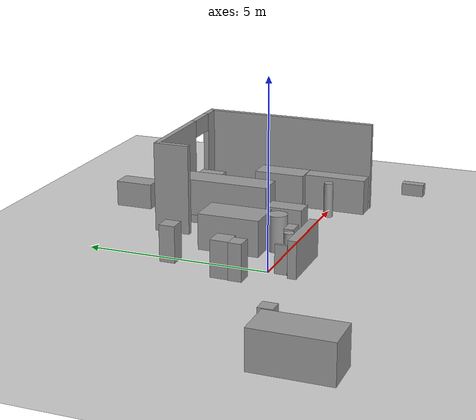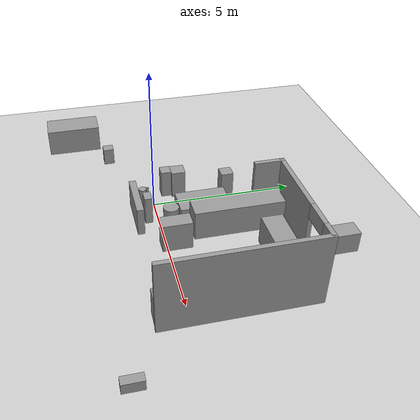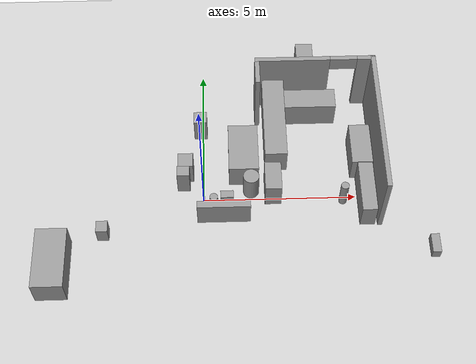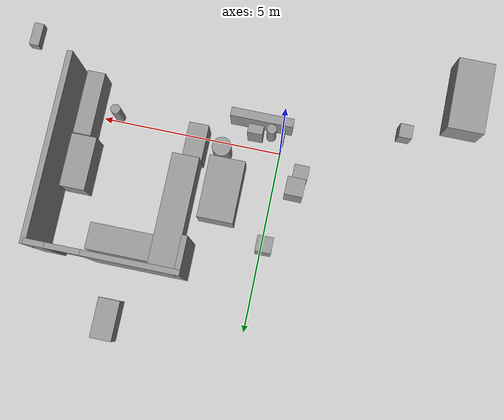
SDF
<sdf version="1.9">
 <world name="default">
  <model name="ground_plane">
   <static>true</static>
   <link name="link">
    <collision name="collision">
     <geometry><plane><normal>0 0 1</normal><size>100 100</size></plane></geometry>
     <surface><friction><ode><mu>100</mu><mu2>50</mu2></ode></friction></surface>
    </collision>
    <visual name="visual">
     <cast_shadows>false</cast_shadows>
     <geometry><plane><normal>0 0 1</normal><size>100 100</size></plane></geometry>
     <material>
      <script><uri>file://media/materials/scripts/gazebo.material</uri><name>Gazebo/Grey</name></script>
     </material>
    </visual>
   </link>
  </model>
  <model name="cma_L5">
   <pose>3.77502 1.45512 0 0 0 0</pose>
   <link name="Wall_0">
    <collision name="Wall_0_Collision">
     <geometry><box><size>1 0.14999999999999999 2.5</size></box></geometry>
     <pose>0 0 1.25 0 0 0</pose>
    </collision>
    <visual name="Wall_0_Visual">
     <pose>0 0 1.25 0 0 0</pose>
     <geometry><box><size>1 0.14999999999999999 2.5</size></box></geometry>
     <material>
      <script><uri>file://media/materials/scripts/gazebo.material</uri><name>Gazebo/Grey</name></script>
      <ambient>1 1 1 1</ambient>
     </material>
    </visual>
    <pose>-1.925 2 0 0 0 1.5708</pose>
   </link>
   <link name="Wall_1">
    <pose>0 2.4249999999999998 0 0 0 0</pose>
    <visual name="Wall_1_Visual_0">
     <pose>-0.75249999999999995 0 1.25 0 0 0</pose>
     <geometry><box><size>2.4950000000000001 0.14999999999999999 2.5</size></box></geometry>
     <material>
      <script><uri>file://media/materials/scripts/gazebo.material</uri><name>Gazebo/Grey</name></script>
      <ambient>1 1 1 1</ambient>
     </material>
    </visual>
    <collision name="Wall_1_Collision_0">
     <geometry><box><size>2.4950000000000001 0.14999999999999999 2.5</size></box></geometry>
     <pose>-0.75249999999999995 0 1.25 0 0 0</pose>
    </collision>
    <visual name="Wall_1_Visual_1">
     <pose>1.6975 0 1.25 0 0 0</pose>
     <geometry><box><size>0.60499999999999998 0.14999999999999999 2.5</size></box></geometry>
     <material>
      <script><uri>file://media/materials/scripts/gazebo.material</uri><name>Gazebo/Grey</name></script>
      <ambient>1 1 1 1</ambient>
     </material>
    </visual>
    <collision name="Wall_1_Collision_1">
     <geometry><box><size>0.60499999999999998 0.14999999999999999 2.5</size></box></geometry>
     <pose>1.6975 0 1.25 0 0 0</pose>
    </collision>
    <visual name="Wall_1_Visual_2">
     <pose>0.94499999999999995 0 2.25 0 0 0</pose>
     <geometry><box><size>0.90000000000000002 0.14999999999999999 0.5</size></box></geometry>
     <material>
      <script><uri>file://media/materials/scripts/gazebo.material</uri><name>Gazebo/Grey</name></script>
      <ambient>1 1 1 1</ambient>
     </material>
    </visual>
    <collision name="Wall_1_Collision_2">
     <geometry><box><size>0.90000000000000002 0.14999999999999999 0.5</size></box></geometry>
     <pose>0.94499999999999995 0 2.25 0 0 0</pose>
    </collision>
   </link>
   <link name="Wall_3">
    <collision name="Wall_3_Collision">
     <geometry><box><size>5 0.14999999999999999 2.5</size></box></geometry>
     <pose>0 0 1.25 0 0 0</pose>
    </collision>
    <visual name="Wall_3_Visual">
     <pose>0 0 1.25 0 0 0</pose>
     <geometry><box><size>5 0.14999999999999999 2.5</size></box></geometry>
     <material>
      <script><uri>file://media/materials/scripts/gazebo.material</uri><name>Gazebo/Grey</name></script>
      <ambient>1 1 1 1</ambient>
     </material>
    </visual>
    <pose>1.925 0 0 0 0 -1.5708</pose>
   </link>
   <static>true</static>
  </model>
  <model name="cma_armario">
   <link name="link_0">
    <pose>1.3215699999999999 0.88517800000000002 0.5 0 0 0</pose>
    <inertial>
     <mass>0.40237600000000001</mass>
     <inertia>
      <ixx>0.0353686</ixx>
      <ixy>0</ixy>
      <ixz>0</ixz>
      <iyy>0.13261600000000001</iyy>
      <iyz>0</iyz>
      <izz>0.100922</izz>
     </inertia>
    </inertial>
    <visual name="visual">
     <geometry><box><size>1.7187699999999999 0.234069 1</size></box></geometry>
     <material>
      <lighting>true</lighting>
      <script><uri>file://media/materials/scripts/gazebo.material</uri><name>Gazebo/Grey</name></script>
      <ambient>0.300000012 0.300000012 0.300000012 1</ambient>
      <diffuse>0.699999988 0.699999988 0.699999988 1</diffuse>
      <specular>0.00999999978 0.00999999978 0.00999999978 1</specular>
      <emissive>0 0 0 1</emissive>
     </material>
    </visual>
    <collision name="collision">
     <geometry><box><size>1.7187699999999999 0.234069 1</size></box></geometry>
     <surface>
      <friction>
       <ode><mu>1</mu><mu2>1</mu2><fdir1>0 0 0</fdir1><slip1>0</slip1><slip2>0</slip2></ode>
       <torsional>
        <coefficient>1</coefficient>
        <patch_radius>0</patch_radius>
        <surface_radius>0</surface_radius>
        <use_patch_radius>true</use_patch_radius>
        <ode><slip>0</slip></ode>
       </torsional>
      </friction>
      <bounce><restitution_coefficient>0</restitution_coefficient><threshold>1000000</threshold></bounce>
      <contact>
       <collide_without_contact>false</collide_without_contact>
       <collide_without_contact_bitmask>1</collide_without_contact_bitmask>
       <collide_bitmask>1</collide_bitmask>
       <ode>
        <soft_cfm>0</soft_cfm>
        <soft_erp>0.20000000000000001</soft_erp>
        <kp>10000000000000</kp>
        <kd>1</kd>
        <max_vel>0.01</max_vel>
        <min_depth>0</min_depth>
       </ode>
       <bullet>
        <split_impulse>true</split_impulse>
        <split_impulse_penetration_threshold>-0.01</split_impulse_penetration_threshold>
        <soft_cfm>0</soft_cfm>
        <soft_erp>0.20000000000000001</soft_erp>
        <kp>10000000000000</kp>
        <kd>1</kd>
       </bullet>
      </contact>
     </surface>
    </collision>
   </link>
   <static>false</static>
   <pose>-0.67050900000000002 -1.58172 9.9999999999999995e-07 -1.0000000000000004e-06 1.0000000000000004e-06 -0.00032100000000000005</pose>
  </model>
  <model name="cma_picador_0">
   <link name="link_2">
    <pose>-0.7258 -1.6910400000000001 0 0 0 0</pose>
    <inertial>
     <mass>0.10473200000000001</mass>
     <inertia>
      <ixx>0.0092790600000000004</ixx>
      <ixy>0</ixy>
      <ixz>0</ixz>
      <iyy>0.010243</iyy>
      <iyz>0</iyz>
      <izz>0.0020667200000000002</izz>
     </inertia>
    </inertial>
    <visual name="visual">
     <geometry><box><size>0.416688 0.25134000000000001 1</size></box></geometry>
     <material>
      <lighting>true</lighting>
      <script><uri>file://media/materials/scripts/gazebo.material</uri><name>Gazebo/Grey</name></script>
      <ambient>0.300000012 0.300000012 0.300000012 1</ambient>
      <diffuse>0.699999988 0.699999988 0.699999988 1</diffuse>
      <specular>0.00999999978 0.00999999978 0.00999999978 1</specular>
      <emissive>0 0 0 1</emissive>
     </material>
    </visual>
    <collision name="collision">
     <geometry><box><size>0.416688 0.25134000000000001 1</size></box></geometry>
     <surface>
      <friction>
       <ode><mu>1</mu><mu2>1</mu2><fdir1>0 0 0</fdir1><slip1>0</slip1><slip2>0</slip2></ode>
       <torsional>
        <coefficient>1</coefficient>
        <patch_radius>0</patch_radius>
        <surface_radius>0</surface_radius>
        <use_patch_radius>true</use_patch_radius>
        <ode><slip>0</slip></ode>
       </torsional>
      </friction>
      <bounce><restitution_coefficient>0</restitution_coefficient><threshold>1000000</threshold></bounce>
      <contact>
       <collide_without_contact>false</collide_without_contact>
       <collide_without_contact_bitmask>1</collide_without_contact_bitmask>
       <collide_bitmask>1</collide_bitmask>
       <ode>
        <soft_cfm>0</soft_cfm>
        <soft_erp>0.20000000000000001</soft_erp>
        <kp>10000000000000</kp>
        <kd>1</kd>
        <max_vel>0.01</max_vel>
        <min_depth>0</min_depth>
       </ode>
       <bullet>
        <split_impulse>true</split_impulse>
        <split_impulse_penetration_threshold>-0.01</split_impulse_penetration_threshold>
        <soft_cfm>0</soft_cfm>
        <soft_erp>0.20000000000000001</soft_erp>
        <kp>10000000000000</kp>
        <kd>1</kd>
       </bullet>
      </contact>
     </surface>
    </collision>
   </link>
   <static>false</static>
   <pose>1.46993 1.3607499999999999 0.49999900000000003 1.654361225109364e-24 2.0000000000000003e-06 0.010210000000000002</pose>
  </model>
  <model name="cma_lixo">
   <link name="link_1">
    <pose>0.88296200000000002 1.81586 0.5 0 0 0</pose>
    <inertial>
     <mass>0.068764400000000003</mass>
     <inertia>
      <ixx>0.00602588</ixx>
      <ixy>0</ixy>
      <ixz>0</ixz>
      <iyy>0.00602588</iyy>
      <iyz>0</iyz>
      <izz>0.00059106800000000004</izz>
     </inertia>
    </inertial>
    <visual name="visual">
     <geometry><cylinder><radius>0.13111200000000001</radius><length>1</length></cylinder></geometry>
     <material>
      <lighting>true</lighting>
      <script><uri>file://media/materials/scripts/gazebo.material</uri><name>Gazebo/Grey</name></script>
      <ambient>0.300000012 0.300000012 0.300000012 1</ambient>
      <diffuse>0.699999988 0.699999988 0.699999988 1</diffuse>
      <specular>0.00999999978 0.00999999978 0.00999999978 1</specular>
      <emissive>0 0 0 1</emissive>
     </material>
    </visual>
    <collision name="collision">
     <geometry><cylinder><radius>0.13111200000000001</radius><length>1</length></cylinder></geometry>
     <surface>
      <friction>
       <ode><mu>1</mu><mu2>1</mu2><fdir1>0 0 0</fdir1><slip1>0</slip1><slip2>0</slip2></ode>
       <torsional>
        <coefficient>1</coefficient>
        <patch_radius>0</patch_radius>
        <surface_radius>0</surface_radius>
        <use_patch_radius>true</use_patch_radius>
        <ode><slip>0</slip></ode>
       </torsional>
      </friction>
      <bounce><restitution_coefficient>0</restitution_coefficient><threshold>1000000</threshold></bounce>
      <contact>
       <collide_without_contact>false</collide_without_contact>
       <collide_without_contact_bitmask>1</collide_without_contact_bitmask>
       <collide_bitmask>1</collide_bitmask>
       <ode>
        <soft_cfm>0</soft_cfm>
        <soft_erp>0.20000000000000001</soft_erp>
        <kp>10000000000000</kp>
        <kd>1</kd>
        <max_vel>0.01</max_vel>
        <min_depth>0</min_depth>
       </ode>
       <bullet>
        <split_impulse>true</split_impulse>
        <split_impulse_penetration_threshold>-0.01</split_impulse_penetration_threshold>
        <soft_cfm>0</soft_cfm>
        <soft_erp>0.20000000000000001</soft_erp>
        <kp>10000000000000</kp>
        <kd>1</kd>
       </bullet>
      </contact>
     </surface>
    </collision>
   </link>
   <static>false</static>
   <pose>-1.35785 -1.5254399999999999 -5.0000000000000004e-06 0 0 -0.54309700000000016</pose>
  </model>
  <model name="cma_cesto">
   <link name="link_1">
    <pose>-0.32965899999999998 -1.55494 0 0 0 0</pose>
    <inertial>
     <mass>0.267897</mass>
     <inertia>
      <ixx>0.026810199999999999</ixx>
      <ixy>0</ixy>
      <ixz>0</ixz>
      <iyy>0.026810199999999999</iyy>
      <iyz>0</iyz>
      <izz>0.0089711099999999992</izz>
     </inertia>
    </inertial>
    <visual name="visual">
     <geometry><cylinder><radius>0.25879200000000002</radius><length>1</length></cylinder></geometry>
     <material>
      <lighting>true</lighting>
      <script><uri>file://media/materials/scripts/gazebo.material</uri><name>Gazebo/Grey</name></script>
      <ambient>0.300000012 0.300000012 0.300000012 1</ambient>
      <diffuse>0.699999988 0.699999988 0.699999988 1</diffuse>
      <specular>0.00999999978 0.00999999978 0.00999999978 1</specular>
      <emissive>0 0 0 1</emissive>
     </material>
    </visual>
    <collision name="collision">
     <geometry><cylinder><radius>0.25879200000000002</radius><length>1</length></cylinder></geometry>
     <surface>
      <friction>
       <ode><mu>1</mu><mu2>1</mu2><fdir1>0 0 0</fdir1><slip1>0</slip1><slip2>0</slip2></ode>
       <torsional>
        <coefficient>1</coefficient>
        <patch_radius>0</patch_radius>
        <surface_radius>0</surface_radius>
        <use_patch_radius>true</use_patch_radius>
        <ode><slip>0</slip></ode>
       </torsional>
      </friction>
      <bounce><restitution_coefficient>0</restitution_coefficient><threshold>1000000</threshold></bounce>
      <contact>
       <collide_without_contact>false</collide_without_contact>
       <collide_without_contact_bitmask>1</collide_without_contact_bitmask>
       <collide_bitmask>1</collide_bitmask>
       <ode>
        <soft_cfm>0</soft_cfm>
        <soft_erp>0.20000000000000001</soft_erp>
        <kp>10000000000000</kp>
        <kd>1</kd>
        <max_vel>0.01</max_vel>
        <min_depth>0</min_depth>
       </ode>
       <bullet>
        <split_impulse>true</split_impulse>
        <split_impulse_penetration_threshold>-0.01</split_impulse_penetration_threshold>
        <soft_cfm>0</soft_cfm>
        <soft_erp>0.20000000000000001</soft_erp>
        <kp>10000000000000</kp>
        <kd>1</kd>
       </bullet>
      </contact>
     </surface>
    </collision>
   </link>
   <static>false</static>
   <pose>1.9109700000000001 1.85863 0.499998 0 0 -0.013204999999999998</pose>
  </model>
  <model name="cma_sofa_2_lugares">
   <link name="link_0">
    <pose>-0.034013000000000002 -0.039828000000000002 0 0 0 0</pose>
    <inertial>
     <mass>1.6607099999999999</mass>
     <inertia>
      <ixx>0.53818299999999997</ixx>
      <ixy>0</ixy>
      <ixz>0</ixz>
      <iyy>0.27051900000000001</iyy>
      <iyz>0</iyz>
      <izz>0.53191500000000003</izz>
     </inertia>
    </inertial>
    <visual name="visual">
     <geometry><box><size>0.97714699999999999 1.6996800000000001 1</size></box></geometry>
     <material>
      <lighting>true</lighting>
      <script><uri>file://media/materials/scripts/gazebo.material</uri><name>Gazebo/Grey</name></script>
      <ambient>0.300000012 0.300000012 0.300000012 1</ambient>
      <diffuse>0.699999988 0.699999988 0.699999988 1</diffuse>
      <specular>0.00999999978 0.00999999978 0.00999999978 1</specular>
      <emissive>0 0 0 1</emissive>
     </material>
    </visual>
    <collision name="collision">
     <geometry><box><size>0.97714699999999999 1.6996800000000001 1</size></box></geometry>
     <surface>
      <friction>
       <ode><mu>1</mu><mu2>1</mu2><fdir1>0 0 0</fdir1><slip1>0</slip1><slip2>0</slip2></ode>
       <torsional>
        <coefficient>1</coefficient>
        <patch_radius>0</patch_radius>
        <surface_radius>0</surface_radius>
        <use_patch_radius>true</use_patch_radius>
        <ode><slip>0</slip></ode>
       </torsional>
      </friction>
      <bounce><restitution_coefficient>0</restitution_coefficient><threshold>1000000</threshold></bounce>
      <contact>
       <collide_without_contact>false</collide_without_contact>
       <collide_without_contact_bitmask>1</collide_without_contact_bitmask>
       <collide_bitmask>1</collide_bitmask>
       <ode>
        <soft_cfm>0</soft_cfm>
        <soft_erp>0.20000000000000001</soft_erp>
        <kp>10000000000000</kp>
        <kd>1</kd>
        <max_vel>0.01</max_vel>
        <min_depth>0</min_depth>
       </ode>
       <bullet>
        <split_impulse>true</split_impulse>
        <split_impulse_penetration_threshold>-0.01</split_impulse_penetration_threshold>
        <soft_cfm>0</soft_cfm>
        <soft_erp>0.20000000000000001</soft_erp>
        <kp>10000000000000</kp>
        <kd>1</kd>
       </bullet>
      </contact>
     </surface>
    </collision>
   </link>
   <static>false</static>
   <pose>1.3641399999999999 1.47316 0.5 0 0 0.00038400000000000001</pose>
  </model>
  <model name="cma_gaveteiro_pequeno_0">
   <link name="link_0">
    <pose>0.25617400000000001 1.2505500000000001 0.5 0 0 0</pose>
    <inertial>
     <mass>0.18718599999999999</mass>
     <inertia>
      <ixx>0.018509999999999999</ixx>
      <ixy>0</ixy>
      <ixz>0</ixz>
      <iyy>0.018527600000000002</iyy>
      <iyz>0</iyz>
      <izz>0.00583981</izz>
     </inertia>
    </inertial>
    <visual name="visual">
     <geometry><box><size>0.43331700000000001 0.432002 1</size></box></geometry>
     <material>
      <lighting>true</lighting>
      <script><uri>file://media/materials/scripts/gazebo.material</uri><name>Gazebo/Grey</name></script>
      <ambient>0.300000012 0.300000012 0.300000012 1</ambient>
      <diffuse>0.699999988 0.699999988 0.699999988 1</diffuse>
      <specular>0.00999999978 0.00999999978 0.00999999978 1</specular>
      <emissive>0 0 0 1</emissive>
     </material>
    </visual>
    <collision name="collision">
     <geometry><box><size>0.43331700000000001 0.432002 1</size></box></geometry>
     <surface>
      <friction>
       <ode><mu>1</mu><mu2>1</mu2><fdir1>0 0 0</fdir1><slip1>0</slip1><slip2>0</slip2></ode>
       <torsional>
        <coefficient>1</coefficient>
        <patch_radius>0</patch_radius>
        <surface_radius>0</surface_radius>
        <use_patch_radius>true</use_patch_radius>
        <ode><slip>0</slip></ode>
       </torsional>
      </friction>
      <bounce><restitution_coefficient>0</restitution_coefficient><threshold>1000000</threshold></bounce>
      <contact>
       <collide_without_contact>false</collide_without_contact>
       <collide_without_contact_bitmask>1</collide_without_contact_bitmask>
       <collide_bitmask>1</collide_bitmask>
       <ode>
        <soft_cfm>0</soft_cfm>
        <soft_erp>0.20000000000000001</soft_erp>
        <kp>10000000000000</kp>
        <kd>1</kd>
        <max_vel>0.01</max_vel>
        <min_depth>0</min_depth>
       </ode>
       <bullet>
        <split_impulse>true</split_impulse>
        <split_impulse_penetration_threshold>-0.01</split_impulse_penetration_threshold>
        <soft_cfm>0</soft_cfm>
        <soft_erp>0.20000000000000001</soft_erp>
        <kp>10000000000000</kp>
        <kd>1</kd>
       </bullet>
      </contact>
     </surface>
    </collision>
   </link>
   <static>false</static>
   <pose>-0.33616800000000002 1.3951499999999999 0 0 -6.9999999999999999e-06 -0.00014699999999999997</pose>
  </model>
  <model name="cma_gaveteiro_0">
   <link name="link_0">
    <pose>0 3.9999999999999998e-06 0 0 0 0</pose>
    <inertial>
     <mass>0.245086</mass>
     <inertia>
      <ixx>0.025418</ixx>
      <ixy>0</ixy>
      <ixz>0</ixz>
      <iyy>0.025441100000000001</iyy>
      <iyz>0</iyz>
      <izz>0.010011300000000001</izz>
     </inertia>
    </inertial>
    <visual name="visual">
     <geometry><box><size>0.49565700000000001 0.49449100000000001 1</size></box></geometry>
     <material>
      <lighting>true</lighting>
      <script><uri>file://media/materials/scripts/gazebo.material</uri><name>Gazebo/Grey</name></script>
      <ambient>0.300000012 0.300000012 0.300000012 1</ambient>
      <diffuse>0.699999988 0.699999988 0.699999988 1</diffuse>
      <specular>0.00999999978 0.00999999978 0.00999999978 1</specular>
      <emissive>0 0 0 1</emissive>
     </material>
    </visual>
    <collision name="collision">
     <geometry><box><size>0.49565700000000001 0.49449100000000001 1</size></box></geometry>
     <surface>
      <friction>
       <ode><mu>1</mu><mu2>1</mu2><fdir1>0 0 0</fdir1><slip1>0</slip1><slip2>0</slip2></ode>
       <torsional>
        <coefficient>1</coefficient>
        <patch_radius>0</patch_radius>
        <surface_radius>0</surface_radius>
        <use_patch_radius>true</use_patch_radius>
        <ode><slip>0</slip></ode>
       </torsional>
      </friction>
      <bounce><restitution_coefficient>0</restitution_coefficient><threshold>1000000</threshold></bounce>
      <contact>
       <collide_without_contact>false</collide_without_contact>
       <collide_without_contact_bitmask>1</collide_without_contact_bitmask>
       <collide_bitmask>1</collide_bitmask>
       <ode>
        <soft_cfm>0</soft_cfm>
        <soft_erp>0.20000000000000001</soft_erp>
        <kp>10000000000000</kp>
        <kd>1</kd>
        <max_vel>0.01</max_vel>
        <min_depth>0</min_depth>
       </ode>
       <bullet>
        <split_impulse>true</split_impulse>
        <split_impulse_penetration_threshold>-0.01</split_impulse_penetration_threshold>
        <soft_cfm>0</soft_cfm>
        <soft_erp>0.20000000000000001</soft_erp>
        <kp>10000000000000</kp>
        <kd>1</kd>
       </bullet>
      </contact>
     </surface>
    </collision>
   </link>
   <static>false</static>
   <pose>-0.57796899999999996 0.98386300000000004 0.50000199999999995 -9.9999999999999995e-07 8.000000000000003e-06 -0.015335</pose>
  </model>
  <model name="cma_sofa2">
   <link name="link_0">
    <pose>-4.6680000000000001 -2.0060099999999998 0.5 0 0 0</pose>
    <inertial>
     <mass>1.9868300000000001</mass>
     <inertia>
      <ixx>0.81914900000000002</ixx>
      <ixy>0</ixy>
      <ixz>0</ixz>
      <iyy>0.33113799999999999</iyy>
      <iyz>0</iyz>
      <izz>0.81914900000000002</izz>
     </inertia>
    </inertial>
    <visual name="visual">
     <geometry><box><size>1 1.98682 1</size></box></geometry>
     <material>
      <lighting>true</lighting>
      <script><uri>file://media/materials/scripts/gazebo.material</uri><name>Gazebo/Grey</name></script>
      <ambient>0.300000012 0.300000012 0.300000012 1</ambient>
      <diffuse>0.699999988 0.699999988 0.699999988 1</diffuse>
      <specular>0.00999999978 0.00999999978 0.00999999978 1</specular>
      <emissive>0 0 0 1</emissive>
     </material>
    </visual>
    <collision name="collision">
     <geometry><box><size>1 1.98682 1</size></box></geometry>
     <surface>
      <friction>
       <ode><mu>1</mu><mu2>1</mu2><fdir1>0 0 0</fdir1><slip1>0</slip1><slip2>0</slip2></ode>
       <torsional>
        <coefficient>1</coefficient>
        <patch_radius>0</patch_radius>
        <surface_radius>0</surface_radius>
        <use_patch_radius>true</use_patch_radius>
        <ode><slip>0</slip></ode>
       </torsional>
      </friction>
      <bounce><restitution_coefficient>0</restitution_coefficient><threshold>1000000</threshold></bounce>
      <contact>
       <collide_without_contact>false</collide_without_contact>
       <collide_without_contact_bitmask>1</collide_without_contact_bitmask>
       <collide_bitmask>1</collide_bitmask>
       <ode>
        <soft_cfm>0</soft_cfm>
        <soft_erp>0.20000000000000001</soft_erp>
        <kp>10000000000000</kp>
        <kd>1</kd>
        <max_vel>0.01</max_vel>
        <min_depth>0</min_depth>
       </ode>
       <bullet>
        <split_impulse>true</split_impulse>
        <split_impulse_penetration_threshold>-0.01</split_impulse_penetration_threshold>
        <soft_cfm>0</soft_cfm>
        <soft_erp>0.20000000000000001</soft_erp>
        <kp>10000000000000</kp>
        <kd>1</kd>
       </bullet>
      </contact>
     </surface>
    </collision>
   </link>
   <static>false</static>
   <pose>-0.095334000000000002 -0.40833399999999997 -5.0000000000000004e-06 -3.0000000000000001e-06 -1.0000000000000002e-06 2.0000000000000003e-06</pose>
  </model>
  <model name="cma_apoio_s">
   <link name="link_1">
    <pose>-1.9376 -3.4655100000000001 0.5 0 0 0</pose>
    <inertial>
     <mass>0.087846300000000002</mass>
     <inertia>
      <ixx>0.0039269600000000002</ixx>
      <ixy>0</ixy>
      <ixz>0</ixz>
      <iyy>0.0038535599999999998</iyy>
      <iyz>0</iyz>
      <izz>0.0020587000000000001</izz>
     </inertia>
    </inertial>
    <visual name="visual">
     <geometry><box><size>0.36822300000000002 0.38159199999999999 0.62511799999999995</size></box></geometry>
     <material>
      <lighting>true</lighting>
      <script><uri>file://media/materials/scripts/gazebo.material</uri><name>Gazebo/Grey</name></script>
      <ambient>0.300000012 0.300000012 0.300000012 1</ambient>
      <diffuse>0.699999988 0.699999988 0.699999988 1</diffuse>
      <specular>0.00999999978 0.00999999978 0.00999999978 1</specular>
      <emissive>0 0 0 1</emissive>
     </material>
    </visual>
    <collision name="collision">
     <geometry><box><size>0.36822300000000002 0.38159199999999999 0.62511799999999995</size></box></geometry>
     <surface>
      <friction>
       <ode><mu>1</mu><mu2>1</mu2><fdir1>0 0 0</fdir1><slip1>0</slip1><slip2>0</slip2></ode>
       <torsional>
        <coefficient>1</coefficient>
        <patch_radius>0</patch_radius>
        <surface_radius>0</surface_radius>
        <use_patch_radius>true</use_patch_radius>
        <ode><slip>0</slip></ode>
       </torsional>
      </friction>
      <bounce><restitution_coefficient>0</restitution_coefficient><threshold>1000000</threshold></bounce>
      <contact>
       <collide_without_contact>false</collide_without_contact>
       <collide_without_contact_bitmask>1</collide_without_contact_bitmask>
       <collide_bitmask>1</collide_bitmask>
       <ode>
        <soft_cfm>0</soft_cfm>
        <soft_erp>0.20000000000000001</soft_erp>
        <kp>10000000000000</kp>
        <kd>1</kd>
        <max_vel>0.01</max_vel>
        <min_depth>0</min_depth>
       </ode>
       <bullet>
        <split_impulse>true</split_impulse>
        <split_impulse_penetration_threshold>-0.01</split_impulse_penetration_threshold>
        <soft_cfm>0</soft_cfm>
        <soft_erp>0.20000000000000001</soft_erp>
        <kp>10000000000000</kp>
        <kd>1</kd>
       </bullet>
      </contact>
     </surface>
    </collision>
   </link>
   <static>false</static>
   <pose>-1.31033 2.2717000000000001 -0.18743599999999999 1.0000000000000002e-06 -9.9999999999999995e-07 -0.00046300000000000003</pose>
  </model>
  <model name="cma_gaveteiro_pequeno_e">
   <link name="link_1">
    <pose>9.9999999999999995e-07 -3.0000000000000001e-06 0 0 0 0</pose>
    <inertial>
     <mass>0.14553199999999999</mass>
     <inertia>
      <ixx>0.0136813</ixx>
      <ixy>0</ixy>
      <ixz>0</ixz>
      <iyy>0.0141327</iyy>
      <iyz>0</iyz>
      <izz>0.0035586599999999999</izz>
     </inertia>
    </inertial>
    <visual name="visual">
     <geometry><box><size>0.40660000000000002 0.35791800000000001 1</size></box></geometry>
     <material>
      <lighting>true</lighting>
      <script><uri>file://media/materials/scripts/gazebo.material</uri><name>Gazebo/Grey</name></script>
      <ambient>0.300000012 0.300000012 0.300000012 1</ambient>
      <diffuse>0.699999988 0.699999988 0.699999988 1</diffuse>
      <specular>0.00999999978 0.00999999978 0.00999999978 1</specular>
      <emissive>0 0 0 1</emissive>
     </material>
    </visual>
    <collision name="collision">
     <geometry><box><size>0.40660000000000002 0.35791800000000001 1</size></box></geometry>
     <surface>
      <friction>
       <ode><mu>1</mu><mu2>1</mu2><fdir1>0 0 0</fdir1><slip1>0</slip1><slip2>0</slip2></ode>
       <torsional>
        <coefficient>1</coefficient>
        <patch_radius>0</patch_radius>
        <surface_radius>0</surface_radius>
        <use_patch_radius>true</use_patch_radius>
        <ode><slip>0</slip></ode>
       </torsional>
      </friction>
      <bounce><restitution_coefficient>0</restitution_coefficient><threshold>1000000</threshold></bounce>
      <contact>
       <collide_without_contact>false</collide_without_contact>
       <collide_without_contact_bitmask>1</collide_without_contact_bitmask>
       <collide_bitmask>1</collide_bitmask>
       <ode>
        <soft_cfm>0</soft_cfm>
        <soft_erp>0.20000000000000001</soft_erp>
        <kp>10000000000000</kp>
        <kd>1</kd>
        <max_vel>0.01</max_vel>
        <min_depth>0</min_depth>
       </ode>
       <bullet>
        <split_impulse>true</split_impulse>
        <split_impulse_penetration_threshold>-0.01</split_impulse_penetration_threshold>
        <soft_cfm>0</soft_cfm>
        <soft_erp>0.20000000000000001</soft_erp>
        <kp>10000000000000</kp>
        <kd>1</kd>
       </bullet>
      </contact>
     </surface>
    </collision>
   </link>
   <static>false</static>
   <pose>-0.65303500000000003 0.55876599999999998 0.5 9.9999999999999995e-07 0 -0.015344999999999999</pose>
  </model>
  <model name="cma_barra_70cmV">
   <link name="link_2">
    <pose>0.076239000000000001 -9.9999999999999995e-07 0 0 0 -1.5755999999999999</pose>
    <inertial>
     <mass>0.063136800000000007</mass>
     <inertia>
      <ixx>0.0010654200000000001</ixx>
      <ixy>0</ixy>
      <ixz>0</ixz>
      <iyy>0.0028472699999999998</iyy>
      <iyz>0</iyz>
      <izz>0.0025815</izz>
     </inertia>
    </inertial>
    <visual name="visual">
     <geometry><box><size>0.64393800000000001 0.27572799999999997 0.35573700000000003</size></box></geometry>
     <material>
      <lighting>true</lighting>
      <script><uri>file://media/materials/scripts/gazebo.material</uri><name>Gazebo/Grey</name></script>
      <ambient>0.300000012 0.300000012 0.300000012 1</ambient>
      <diffuse>0.699999988 0.699999988 0.699999988 1</diffuse>
      <specular>0.00999999978 0.00999999978 0.00999999978 1</specular>
      <emissive>0 0 0 1</emissive>
     </material>
    </visual>
    <collision name="collision">
     <geometry><box><size>0.64393800000000001 0.27572799999999997 0.35573700000000003</size></box></geometry>
     <surface>
      <friction>
       <ode><mu>1</mu><mu2>1</mu2><fdir1>0 0 0</fdir1><slip1>0</slip1><slip2>0</slip2></ode>
       <torsional>
        <coefficient>1</coefficient>
        <patch_radius>0</patch_radius>
        <surface_radius>0</surface_radius>
        <use_patch_radius>true</use_patch_radius>
        <ode><slip>0</slip></ode>
       </torsional>
      </friction>
      <bounce><restitution_coefficient>0</restitution_coefficient><threshold>1000000</threshold></bounce>
      <contact>
       <collide_without_contact>false</collide_without_contact>
       <collide_without_contact_bitmask>1</collide_without_contact_bitmask>
       <collide_bitmask>1</collide_bitmask>
       <ode>
        <soft_cfm>0</soft_cfm>
        <soft_erp>0.20000000000000001</soft_erp>
        <kp>10000000000000</kp>
        <kd>1</kd>
        <max_vel>0.01</max_vel>
        <min_depth>0</min_depth>
       </ode>
       <bullet>
        <split_impulse>true</split_impulse>
        <split_impulse_penetration_threshold>-0.01</split_impulse_penetration_threshold>
        <soft_cfm>0</soft_cfm>
        <soft_erp>0.20000000000000001</soft_erp>
        <kp>10000000000000</kp>
        <kd>1</kd>
       </bullet>
      </contact>
     </surface>
    </collision>
   </link>
   <static>false</static>
   <pose>7.2951699999999997 -1.9239900000000001 0.17786299999999999 0 -2.7000000000000002e-05 -0.00072400000000000003</pose>
  </model>
  <model name="cma_pe_mesa2">
   <link name="link_0">
    <pose>-9.9999999999999995e-07 0 0 0 0 0</pose>
    <inertial>
     <mass>0.0184993</mass>
     <inertia>
      <ixx>0.0011378499999999999</ixx>
      <ixy>0</ixy>
      <ixz>0</ixz>
      <iyy>0.00097356799999999996</iyy>
      <iyz>0</iyz>
      <izz>0.000179385</izz>
     </inertia>
    </inertial>
    <visual name="visual">
     <geometry><box><size>0.070004999999999998 0.33385999999999999 0.79159199999999996</size></box></geometry>
     <material>
      <lighting>true</lighting>
      <script><uri>file://media/materials/scripts/gazebo.material</uri><name>Gazebo/Grey</name></script>
      <ambient>0.300000012 0.300000012 0.300000012 1</ambient>
      <diffuse>0.699999988 0.699999988 0.699999988 1</diffuse>
      <specular>0.00999999978 0.00999999978 0.00999999978 1</specular>
      <emissive>0 0 0 1</emissive>
     </material>
    </visual>
    <collision name="collision">
     <geometry><box><size>0.070004999999999998 0.33385999999999999 0.79159199999999996</size></box></geometry>
     <surface>
      <friction>
       <ode><mu>1</mu><mu2>1</mu2><fdir1>0 0 0</fdir1><slip1>0</slip1><slip2>0</slip2></ode>
       <torsional>
        <coefficient>1</coefficient>
        <patch_radius>0</patch_radius>
        <surface_radius>0</surface_radius>
        <use_patch_radius>true</use_patch_radius>
        <ode><slip>0</slip></ode>
       </torsional>
      </friction>
      <bounce><restitution_coefficient>0</restitution_coefficient><threshold>1000000</threshold></bounce>
      <contact>
       <collide_without_contact>false</collide_without_contact>
       <collide_without_contact_bitmask>1</collide_without_contact_bitmask>
       <collide_bitmask>1</collide_bitmask>
       <ode>
        <soft_cfm>0</soft_cfm>
        <soft_erp>0.20000000000000001</soft_erp>
        <kp>10000000000000</kp>
        <kd>1</kd>
        <max_vel>0.01</max_vel>
        <min_depth>0</min_depth>
       </ode>
       <bullet>
        <split_impulse>true</split_impulse>
        <split_impulse_penetration_threshold>-0.01</split_impulse_penetration_threshold>
        <soft_cfm>0</soft_cfm>
        <soft_erp>0.20000000000000001</soft_erp>
        <kp>10000000000000</kp>
        <kd>1</kd>
       </bullet>
      </contact>
     </surface>
    </collision>
   </link>
   <static>false</static>
   <pose>0.0086339999999999993 -0.34209400000000001 0.39579599999999998 0 -1.9999999999999999e-06 -0.0021680000000000002</pose>
  </model>
  <model name="cma_armario_coz_190x70cm">
   <link name="link_0">
    <pose>5.2095799999999999 2.97661 0.5 0 0 -1.5706800000000001</pose>
    <inertial>
     <mass>1.2966</mass>
     <inertia>
      <ixx>0.45447700000000002</ixx>
      <ixy>0</ixy>
      <ixz>0</ixz>
      <iyy>0.16470599999999999</iyy>
      <iyz>0</iyz>
      <izz>0.403084</izz>
     </inertia>
    </inertial>
    <visual name="visual">
     <geometry><box><size>0.72418400000000005 1.7905800000000001 1</size></box></geometry>
     <material>
      <lighting>true</lighting>
      <script><uri>file://media/materials/scripts/gazebo.material</uri><name>Gazebo/Grey</name></script>
      <ambient>0.300000012 0.300000012 0.300000012 1</ambient>
      <diffuse>0.699999988 0.699999988 0.699999988 1</diffuse>
      <specular>0.00999999978 0.00999999978 0.00999999978 1</specular>
      <emissive>0 0 0 1</emissive>
     </material>
    </visual>
    <collision name="collision">
     <geometry><box><size>0.72418400000000005 1.7905800000000001 1</size></box></geometry>
     <surface>
      <friction>
       <ode><mu>1</mu><mu2>1</mu2><fdir1>0 0 0</fdir1><slip1>0</slip1><slip2>0</slip2></ode>
       <torsional>
        <coefficient>1</coefficient>
        <patch_radius>0</patch_radius>
        <surface_radius>0</surface_radius>
        <use_patch_radius>true</use_patch_radius>
        <ode><slip>0</slip></ode>
       </torsional>
      </friction>
      <bounce><restitution_coefficient>0</restitution_coefficient><threshold>1000000</threshold></bounce>
      <contact>
       <collide_without_contact>false</collide_without_contact>
       <collide_without_contact_bitmask>1</collide_without_contact_bitmask>
       <collide_bitmask>1</collide_bitmask>
       <ode>
        <soft_cfm>0</soft_cfm>
        <soft_erp>0.20000000000000001</soft_erp>
        <kp>10000000000000</kp>
        <kd>1</kd>
        <max_vel>0.01</max_vel>
        <min_depth>0</min_depth>
       </ode>
       <bullet>
        <split_impulse>true</split_impulse>
        <split_impulse_penetration_threshold>-0.01</split_impulse_penetration_threshold>
        <soft_cfm>0</soft_cfm>
        <soft_erp>0.20000000000000001</soft_erp>
        <kp>10000000000000</kp>
        <kd>1</kd>
       </bullet>
      </contact>
     </surface>
    </collision>
   </link>
   <model name="cma_armario_coz_100x50cm">
    <link name="link_0">
     <pose>-3.0000000000000001e-06 -3.0000000000000001e-06 0 0 0 0</pose>
     <inertial>
      <mass>0.53619300000000003</mass>
      <inertia>
       <ixx>0.089365700000000006</ixx>
       <ixy>0</ixy>
       <ixz>0</ixz>
       <iyy>0.057529299999999998</iyy>
       <iyz>0</iyz>
       <izz>0.057529299999999998</izz>
      </inertia>
     </inertial>
     <visual name="visual">
      <geometry><box><size>0.53619300000000003 1 1</size></box></geometry>
      <material>
       <lighting>true</lighting>
       <script><uri>file://media/materials/scripts/gazebo.material</uri><name>Gazebo/Grey</name></script>
       <ambient>0.300000012 0.300000012 0.300000012 1</ambient>
       <diffuse>0.699999988 0.699999988 0.699999988 1</diffuse>
       <specular>0.00999999978 0.00999999978 0.00999999978 1</specular>
       <emissive>0 0 0 1</emissive>
      </material>
     </visual>
     <collision name="collision">
      <geometry><box><size>0.53619300000000003 1 1</size></box></geometry>
      <surface>
       <friction>
        <ode><mu>1</mu><mu2>1</mu2><fdir1>0 0 0</fdir1><slip1>0</slip1><slip2>0</slip2></ode>
        <torsional>
         <coefficient>1</coefficient>
         <patch_radius>0</patch_radius>
         <surface_radius>0</surface_radius>
         <use_patch_radius>true</use_patch_radius>
         <ode><slip>0</slip></ode>
        </torsional>
       </friction>
       <bounce><restitution_coefficient>0</restitution_coefficient><threshold>1000000</threshold></bounce>
       <contact>
        <collide_without_contact>false</collide_without_contact>
        <collide_without_contact_bitmask>1</collide_without_contact_bitmask>
        <collide_bitmask>1</collide_bitmask>
        <ode>
         <soft_cfm>0</soft_cfm>
         <soft_erp>0.20000000000000001</soft_erp>
         <kp>10000000000000</kp>
         <kd>1</kd>
         <max_vel>0.01</max_vel>
         <min_depth>0</min_depth>
        </ode>
        <bullet>
         <split_impulse>true</split_impulse>
         <split_impulse_penetration_threshold>-0.01</split_impulse_penetration_threshold>
         <soft_cfm>0</soft_cfm>
         <soft_erp>0.20000000000000001</soft_erp>
         <kp>10000000000000</kp>
         <kd>1</kd>
        </bullet>
       </contact>
      </surface>
     </collision>
    </link>
    <static>false</static>
    <pose>3.8645499999999999 -0.048915 0.5 0 0 0</pose>
   </model>
   <model name="cma_armario_coz_300x70cm">
    <link name="link_0">
     <pose>3.2642799999999998 1.5085599999999999 0.5 0 0 0</pose>
     <inertial>
      <mass>2.1383299999999998</mass>
      <inertia>
       <ixx>1.732</ixx>
       <ixy>0</ixy>
       <ixz>0</ixz>
       <iyy>0.27163700000000002</iyy>
       <iyz>0</iyz>
       <izz>1.6472500000000001</izz>
      </inertia>
     </inertial>
     <visual name="visual">
      <geometry><box><size>0.72418400000000005 2.9529000000000001 1</size></box></geometry>
      <material>
       <lighting>true</lighting>
       <script><uri>file://media/materials/scripts/gazebo.material</uri><name>Gazebo/Grey</name></script>
       <ambient>0.300000012 0.300000012 0.300000012 1</ambient>
       <diffuse>0.699999988 0.699999988 0.699999988 1</diffuse>
       <specular>0.00999999978 0.00999999978 0.00999999978 1</specular>
       <emissive>0 0 0 1</emissive>
      </material>
     </visual>
     <collision name="collision">
      <geometry><box><size>0.72418400000000005 2.9529000000000001 1</size></box></geometry>
      <surface>
       <friction>
        <ode><mu>1</mu><mu2>1</mu2><fdir1>0 0 0</fdir1><slip1>0</slip1><slip2>0</slip2></ode>
        <torsional>
         <coefficient>1</coefficient>
         <patch_radius>0</patch_radius>
         <surface_radius>0</surface_radius>
         <use_patch_radius>true</use_patch_radius>
         <ode><slip>0</slip></ode>
        </torsional>
       </friction>
       <bounce><restitution_coefficient>0</restitution_coefficient><threshold>1000000</threshold></bounce>
       <contact>
        <collide_without_contact>false</collide_without_contact>
        <collide_without_contact_bitmask>1</collide_without_contact_bitmask>
        <collide_bitmask>1</collide_bitmask>
        <ode>
         <soft_cfm>0</soft_cfm>
         <soft_erp>0.20000000000000001</soft_erp>
         <kp>10000000000000</kp>
         <kd>1</kd>
         <max_vel>0.01</max_vel>
         <min_depth>0</min_depth>
        </ode>
        <bullet>
         <split_impulse>true</split_impulse>
         <split_impulse_penetration_threshold>-0.01</split_impulse_penetration_threshold>
         <soft_cfm>0</soft_cfm>
         <soft_erp>0.20000000000000001</soft_erp>
         <kp>10000000000000</kp>
         <kd>1</kd>
        </bullet>
       </contact>
      </surface>
     </collision>
    </link>
    <static>false</static>
    <pose>0.70628899999999994 0.41883100000000001 0.5 0 0 0</pose>
   </model>
   <static>false</static>
   <pose>-1.59219 0.37055700000000003 -5.0000000000000004e-06 1.9999999999999999e-06 2.0679515313825692e-25 -0.0012000000000000001</pose>
  </model>
  <model name="cma_geladeira">
   <link name="link_2">
    <pose>3.0000000000000001e-06 -3.9999999999999998e-06 0 0 0 0</pose>
    <inertial>
     <mass>0.994085</mass>
     <inertia>
      <ixx>0.258405</ixx>
      <ixy>0</ixy>
      <ixz>0</ixz>
      <iyy>0.12146800000000001</iyy>
      <iyz>0</iyz>
      <izz>0.21419199999999999</izz>
     </inertia>
    </inertial>
    <visual name="visual">
     <geometry><box><size>0.68284400000000001 1.4557899999999999 1</size></box></geometry>
     <material>
      <lighting>true</lighting>
      <script><uri>file://media/materials/scripts/gazebo.material</uri><name>Gazebo/Grey</name></script>
      <ambient>0.300000012 0.300000012 0.300000012 1</ambient>
      <diffuse>0.699999988 0.699999988 0.699999988 1</diffuse>
      <specular>0.00999999978 0.00999999978 0.00999999978 1</specular>
      <emissive>0 0 0 1</emissive>
     </material>
    </visual>
    <collision name="collision">
     <geometry><box><size>0.68284400000000001 1.4557899999999999 1</size></box></geometry>
     <surface>
      <friction>
       <ode><mu>1</mu><mu2>1</mu2><fdir1>0 0 0</fdir1><slip1>0</slip1><slip2>0</slip2></ode>
       <torsional>
        <coefficient>1</coefficient>
        <patch_radius>0</patch_radius>
        <surface_radius>0</surface_radius>
        <use_patch_radius>true</use_patch_radius>
        <ode><slip>0</slip></ode>
       </torsional>
      </friction>
      <bounce><restitution_coefficient>0</restitution_coefficient><threshold>1000000</threshold></bounce>
      <contact>
       <collide_without_contact>false</collide_without_contact>
       <collide_without_contact_bitmask>1</collide_without_contact_bitmask>
       <collide_bitmask>1</collide_bitmask>
       <ode>
        <soft_cfm>0</soft_cfm>
        <soft_erp>0.20000000000000001</soft_erp>
        <kp>10000000000000</kp>
        <kd>1</kd>
        <max_vel>0.01</max_vel>
        <min_depth>0</min_depth>
       </ode>
       <bullet>
        <split_impulse>true</split_impulse>
        <split_impulse_penetration_threshold>-0.01</split_impulse_penetration_threshold>
        <soft_cfm>0</soft_cfm>
        <soft_erp>0.20000000000000001</soft_erp>
        <kp>10000000000000</kp>
        <kd>1</kd>
       </bullet>
      </contact>
     </surface>
    </collision>
   </link>
   <static>false</static>
   <pose>5.2195900000000002 1.47716 0.49999700000000002 -2.5849394143329017e-26 9.0000000000000019e-06 -2.2000000000000003e-05</pose>
  </model>
  <model name="cma_armario_coz_190x40cm">
   <link name="link_3">
    <pose>-3.0000000000000001e-06 9.9999999999999995e-07 0 0 0 0</pose>
    <inertial>
     <mass>0.84861799999999998</mass>
     <inertia>
      <ixx>0.28876000000000002</ixx>
      <ixy>0</ixy>
      <ixz>0</ixz>
      <iyy>0.087235900000000005</iyy>
      <iyz>0</iyz>
      <izz>0.23455899999999999</izz>
     </inertia>
    </inertial>
    <visual name="visual">
     <geometry><box><size>0.48330099999999998 1.7559199999999999 1</size></box></geometry>
     <material>
      <lighting>true</lighting>
      <script><uri>file://media/materials/scripts/gazebo.material</uri><name>Gazebo/Grey</name></script>
      <ambient>0.300000012 0.300000012 0.300000012 1</ambient>
      <diffuse>0.699999988 0.699999988 0.699999988 1</diffuse>
      <specular>0.00999999978 0.00999999978 0.00999999978 1</specular>
      <emissive>0 0 0 1</emissive>
     </material>
    </visual>
    <collision name="collision">
     <geometry><box><size>0.48330099999999998 1.7559199999999999 1</size></box></geometry>
     <surface>
      <friction>
       <ode><mu>1</mu><mu2>1</mu2><fdir1>0 0 0</fdir1><slip1>0</slip1><slip2>0</slip2></ode>
       <torsional>
        <coefficient>1</coefficient>
        <patch_radius>0</patch_radius>
        <surface_radius>0</surface_radius>
        <use_patch_radius>true</use_patch_radius>
        <ode><slip>0</slip></ode>
       </torsional>
      </friction>
      <bounce><restitution_coefficient>0</restitution_coefficient><threshold>1000000</threshold></bounce>
      <contact>
       <collide_without_contact>false</collide_without_contact>
       <collide_without_contact_bitmask>1</collide_without_contact_bitmask>
       <collide_bitmask>1</collide_bitmask>
       <ode>
        <soft_cfm>0</soft_cfm>
        <soft_erp>0.20000000000000001</soft_erp>
        <kp>10000000000000</kp>
        <kd>1</kd>
        <max_vel>0.01</max_vel>
        <min_depth>0</min_depth>
       </ode>
       <bullet>
        <split_impulse>true</split_impulse>
        <split_impulse_penetration_threshold>-0.01</split_impulse_penetration_threshold>
        <soft_cfm>0</soft_cfm>
        <soft_erp>0.20000000000000001</soft_erp>
        <kp>10000000000000</kp>
        <kd>1</kd>
       </bullet>
      </contact>
     </surface>
    </collision>
   </link>
   <static>false</static>
   <pose>5.29765 -0.14773 0.5 0 0 -0.00051500000000000005</pose>
  </model>
  <model name="cma_lixo_5">
   <link name="link_1">
    <pose>0.88296200000000002 1.81586 0.5 0 0 0</pose>
    <inertial>
     <mass>0.068764400000000003</mass>
     <inertia>
      <ixx>0.00602588</ixx>
      <ixy>0</ixy>
      <ixz>0</ixz>
      <iyy>0.00602588</iyy>
      <iyz>0</iyz>
      <izz>0.00059106800000000004</izz>
     </inertia>
    </inertial>
    <visual name="visual">
     <geometry><cylinder><radius>0.13111200000000001</radius><length>1</length></cylinder></geometry>
     <material>
      <lighting>true</lighting>
      <script><uri>file://media/materials/scripts/gazebo.material</uri><name>Gazebo/Grey</name></script>
      <ambient>0.300000012 0.300000012 0.300000012 1</ambient>
      <diffuse>0.699999988 0.699999988 0.699999988 1</diffuse>
      <specular>0.00999999978 0.00999999978 0.00999999978 1</specular>
      <emissive>0 0 0 1</emissive>
     </material>
    </visual>
    <collision name="collision">
     <geometry><cylinder><radius>0.13111200000000001</radius><length>1</length></cylinder></geometry>
     <surface>
      <friction>
       <ode><mu>1</mu><mu2>1</mu2><fdir1>0 0 0</fdir1><slip1>0</slip1><slip2>0</slip2></ode>
       <torsional>
        <coefficient>1</coefficient>
        <patch_radius>0</patch_radius>
        <surface_radius>0</surface_radius>
        <use_patch_radius>true</use_patch_radius>
        <ode><slip>0</slip></ode>
       </torsional>
      </friction>
      <bounce><restitution_coefficient>0</restitution_coefficient><threshold>1000000</threshold></bounce>
      <contact>
       <collide_without_contact>false</collide_without_contact>
       <collide_without_contact_bitmask>1</collide_without_contact_bitmask>
       <collide_bitmask>1</collide_bitmask>
       <ode>
        <soft_cfm>0</soft_cfm>
        <soft_erp>0.20000000000000001</soft_erp>
        <kp>10000000000000</kp>
        <kd>1</kd>
        <max_vel>0.01</max_vel>
        <min_depth>0</min_depth>
       </ode>
       <bullet>
        <split_impulse>true</split_impulse>
        <split_impulse_penetration_threshold>-0.01</split_impulse_penetration_threshold>
        <soft_cfm>0</soft_cfm>
        <soft_erp>0.20000000000000001</soft_erp>
        <kp>10000000000000</kp>
        <kd>1</kd>
       </bullet>
      </contact>
     </surface>
    </collision>
   </link>
   <static>false</static>
   <pose>3.6900499999999998 -1.94018 -7.9999999999999996e-06 0 0 0</pose>
  </model>
  <model name="cma_area_a1">
   <link name="link_0">
    <pose>3.6213299999999999 5.3886799999999999 0.5 0 0 0</pose>
    <inertial>
     <mass>0.459312</mass>
     <inertia>
      <ixx>0.064699400000000004</ixx>
      <ixy>0</ixy>
      <ixz>0</ixz>
      <iyy>0.033477600000000003</iyy>
      <iyz>0</iyz>
      <izz>0.057417700000000002</izz>
     </inertia>
    </inertial>
    <visual name="visual">
     <geometry><box><size>0.58497100000000002 1.07606 0.72968299999999997</size></box></geometry>
     <material>
      <lighting>true</lighting>
      <script><uri>file://media/materials/scripts/gazebo.material</uri><name>Gazebo/Grey</name></script>
      <ambient>0.300000012 0.300000012 0.300000012 1</ambient>
      <diffuse>0.699999988 0.699999988 0.699999988 1</diffuse>
      <specular>0.00999999978 0.00999999978 0.00999999978 1</specular>
      <emissive>0 0 0 1</emissive>
     </material>
    </visual>
    <collision name="collision">
     <geometry><box><size>0.58497100000000002 1.07606 0.72968299999999997</size></box></geometry>
     <surface>
      <friction>
       <ode><mu>1</mu><mu2>1</mu2><fdir1>0 0 0</fdir1><slip1>0</slip1><slip2>0</slip2></ode>
       <torsional>
        <coefficient>1</coefficient>
        <patch_radius>0</patch_radius>
        <surface_radius>0</surface_radius>
        <use_patch_radius>true</use_patch_radius>
        <ode><slip>0</slip></ode>
       </torsional>
      </friction>
      <bounce><restitution_coefficient>0</restitution_coefficient><threshold>1000000</threshold></bounce>
      <contact>
       <collide_without_contact>false</collide_without_contact>
       <collide_without_contact_bitmask>1</collide_without_contact_bitmask>
       <collide_bitmask>1</collide_bitmask>
       <ode>
        <soft_cfm>0</soft_cfm>
        <soft_erp>0.20000000000000001</soft_erp>
        <kp>10000000000000</kp>
        <kd>1</kd>
        <max_vel>0.01</max_vel>
        <min_depth>0</min_depth>
       </ode>
       <bullet>
        <split_impulse>true</split_impulse>
        <split_impulse_penetration_threshold>-0.01</split_impulse_penetration_threshold>
        <soft_cfm>0</soft_cfm>
        <soft_erp>0.20000000000000001</soft_erp>
        <kp>10000000000000</kp>
        <kd>1</kd>
       </bullet>
      </contact>
     </surface>
    </collision>
   </link>
   <static>false</static>
   <pose>0 0 -0.135158 0 0 0</pose>
  </model>
 </world>
</sdf>
